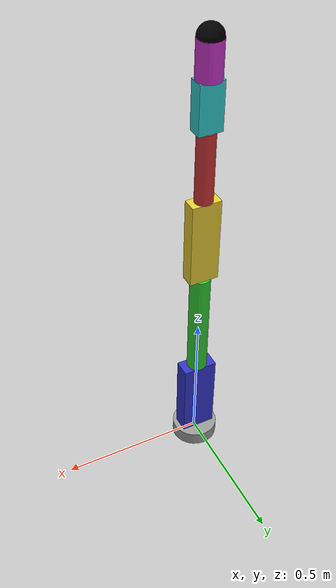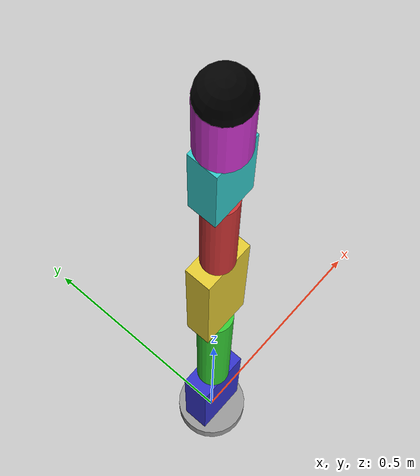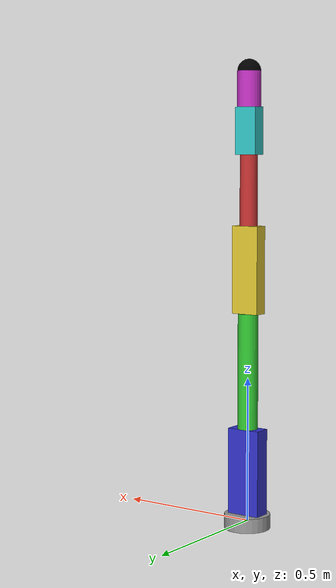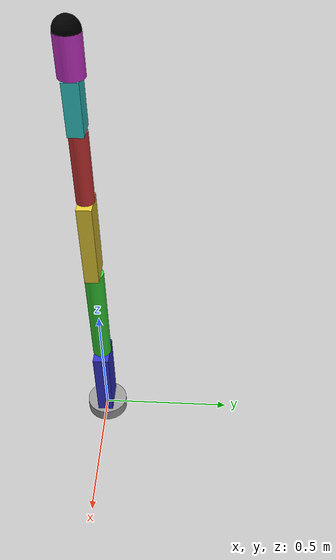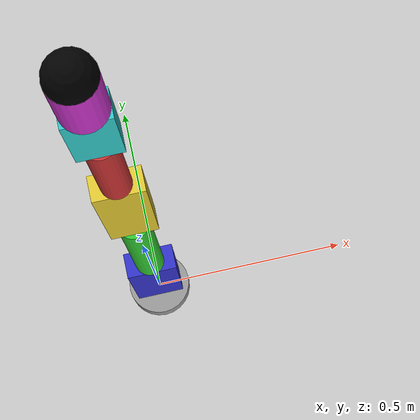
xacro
<?xml version="1.0"?>
<robot name="arm" xmlns:xacro="http://www.ros.org/wiki/xacro">

  <!-- Load pure URDF -->
  <xacro:include filename="$(find arm_description)/urdf/arm.urdf"/>

  <!-- Load ros2_control definitions -->
  <xacro:include filename="$(find arm_description)/urdf/arm_ros2_control.xacro"/>

  <!-- Expand ros2_control -->
  <xacro:arm_ros2_control/>

</robot>

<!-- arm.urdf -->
<robot name="arm" xmlns:xacro="http://www.ros.org/wiki/xacro">

    <!-- Base link -->
    <link name="base_link">
        <visual>
            <origin xyz="0 0 0" rpy="0 0 0"/>
            <geometry>
                <cylinder length="0.05" radius="0.08"/>
            </geometry>
            <material name="gray">
                <color rgba="0.6 0.6 0.6 1.0"/>
            </material>
        </visual>
    </link>

    <!-- Joint 1 -->
    <link name="link_1">
        <visual>
            <origin xyz="0 0 0.15" rpy="0 0 0"/>
            <geometry>
                <box size="0.12 0.06 0.3"/>
            </geometry>
            <material name="blue">
                <color rgba="0.2 0.2 0.8 1.0"/>
            </material>
        </visual>
    </link>

    <joint name="joint_1" type="revolute">
        <parent link="base_link"/>
        <child link="link_1"/>
        <origin xyz="0 0 0.025" rpy="0 0 0"/>
        <axis xyz="0 0 1"/>
        <limit lower="-3.1416" upper="3.1416" effort="50" velocity="2.0"/>
    </joint>

    <!-- Joint 2 -->
    <link name="link_2">
        <visual>
            <origin xyz="0 0 0.20" rpy="0 0 0"/>
            <geometry>
                <cylinder length="0.4" radius="0.035"/>
            </geometry>
            <material name="green">
                <color rgba="0.2 0.8 0.2 1.0"/>
            </material>
        </visual>
    </link>

    <joint name="joint_2" type="revolute">
        <parent link="link_1"/>
        <child link="link_2"/>
        <origin xyz="0 0 0.3" rpy="0 0 0"/>
        <axis xyz="0 1 0"/>
        <limit lower="-1.57" upper="1.57" effort="50" velocity="2.0"/>
    </joint>

    <!-- Joint 3 -->
    <link name="link_3">
        <visual>
            <origin xyz="0 0 0.15" rpy="0 0 0"/>
            <geometry>
                <box size="0.10 0.05 0.3"/>
            </geometry>
            <material name="yellow">
                <color rgba="0.9 0.8 0.2 1.0"/>
            </material>
        </visual>
    </link>

    <joint name="joint_3" type="revolute">
        <parent link="link_2"/>
        <child link="link_3"/>
        <origin xyz="0 0 0.4" rpy="0 0 0"/>
        <axis xyz="0 1 0"/>
        <limit lower="-2.0" upper="2.0" effort="40" velocity="2.0"/>
    </joint>

    <!-- Joint 4 -->
    <link name="link_4">
        <visual>
            <origin xyz="0 0 0.12" rpy="0 0 0"/>
            <geometry>
                <cylinder length="0.24" radius="0.03"/>
            </geometry>
            <material name="red">
                <color rgba="0.8 0.2 0.2 1.0"/>
            </material>
        </visual>
    </link>

    <joint name="joint_4" type="revolute">
        <parent link="link_3"/>
        <child link="link_4"/>
        <origin xyz="0 0 0.3" rpy="0 0 0"/>
        <axis xyz="1 0 0"/>
        <limit lower="-3.1416" upper="3.1416" effort="30" velocity="3.0"/>
    </joint>

    <!-- Joint 5 -->
    <link name="link_5">
        <visual>
            <origin xyz="0 0 0.08" rpy="0 0 0"/>
            <geometry>
                <box size="0.08 0.05 0.16"/>
            </geometry>
            <material name="cyan">
                <color rgba="0.2 0.8 0.8 1.0"/>
            </material>
        </visual>
    </link>

    <joint name="joint_5" type="revolute">
        <parent link="link_4"/>
        <child link="link_5"/>
        <origin xyz="0 0 0.24" rpy="0 0 0"/>
        <axis xyz="0 1 0"/>
        <limit lower="-2.0" upper="2.0" effort="20" velocity="3.0"/>
    </joint>

    <!-- Joint 6 (wrist / end effector) -->
    <link name="link_6">
        <visual>
            <origin xyz="0 0 0.06" rpy="0 0 0"/>
            <geometry>
                <cylinder length="0.12" radius="0.04"/>
            </geometry>
            <material name="magenta">
                <color rgba="0.8 0.2 0.8 1.0"/>
            </material>
        </visual>
    </link>

    <joint name="joint_6" type="revolute">
        <parent link="link_5"/>
        <child link="link_6"/>
        <origin xyz="0 0 0.16" rpy="0 0 0"/>
        <axis xyz="0 0 1"/>
        <limit lower="-6.2832" upper="6.2832" effort="10" velocity="6.0"/>
    </joint>

    <!-- End effector frame (tool) -->
    <link name="ee_link">
        <visual>
            <origin xyz="0 0 0.0" rpy="0 0 0"/>
            <geometry>
                <sphere radius="0.04"/>
            </geometry>
            <material name="black">
                <color rgba="0 0 0 1.0"/>
            </material>
        </visual>
    </link>

    <joint name="ee_fixed" type="fixed">
        <parent link="link_6"/>
        <child link="ee_link"/>
        <origin xyz="0 0 0.12" rpy="0 0 0"/>
    </joint>
</robot>
